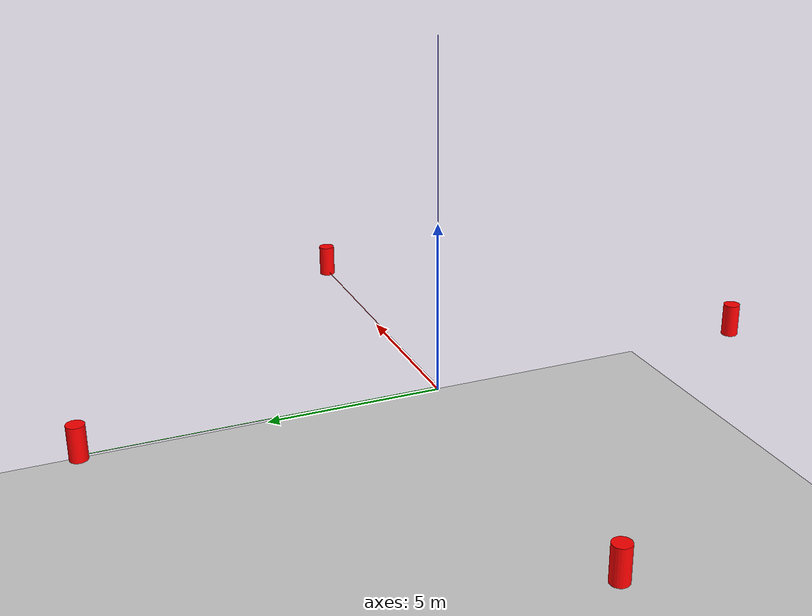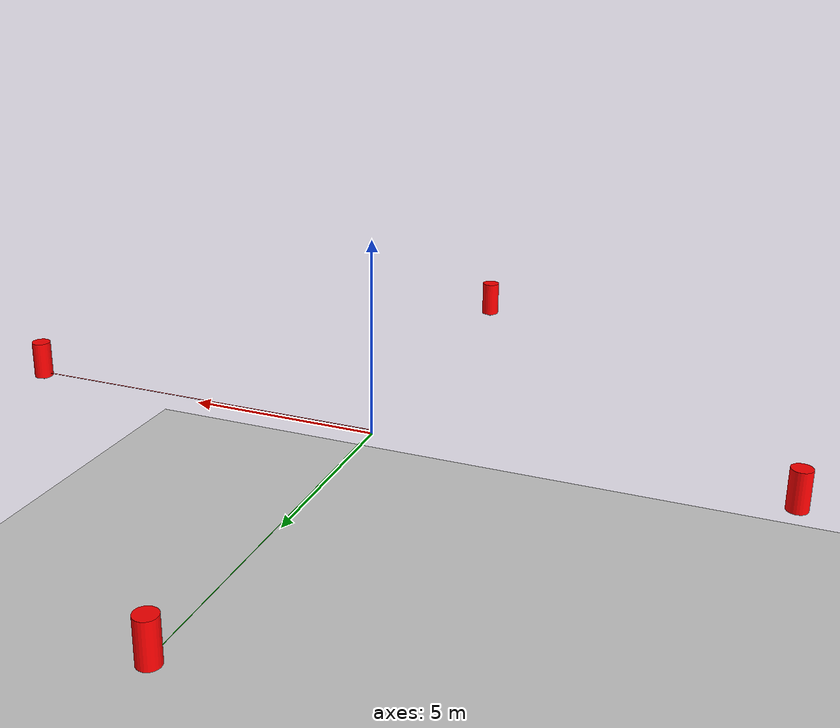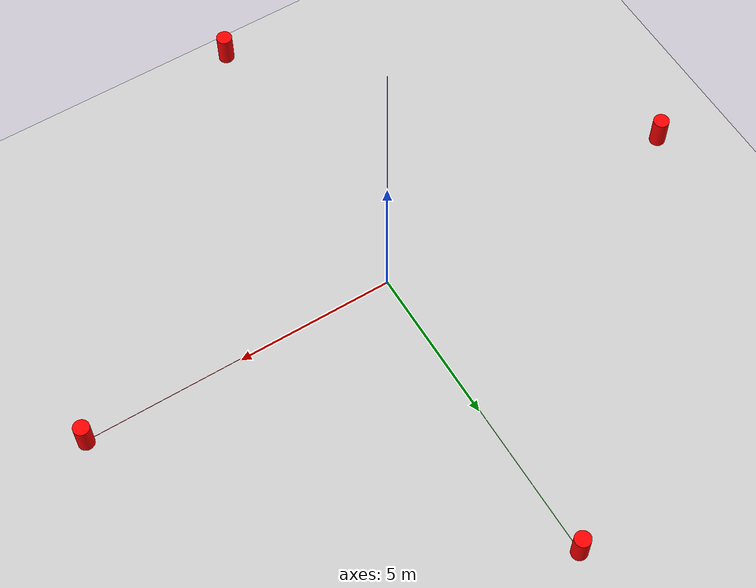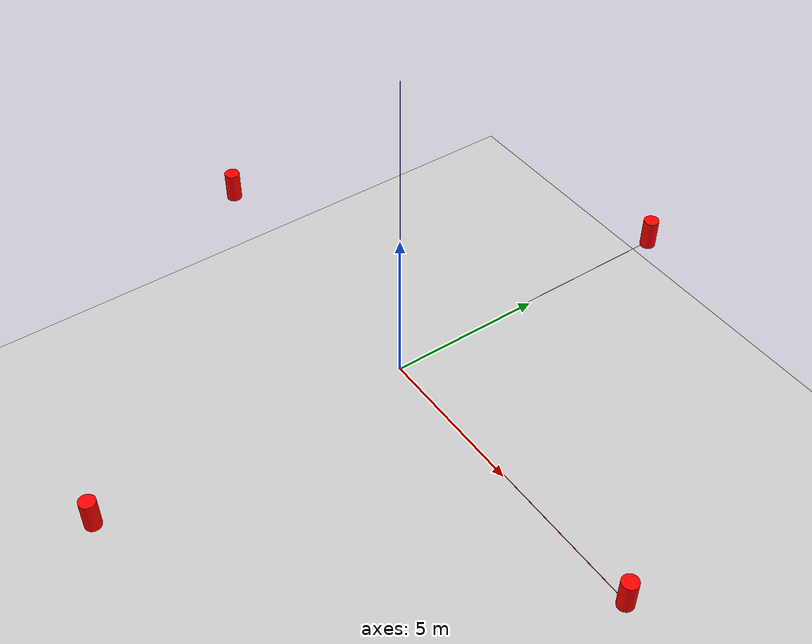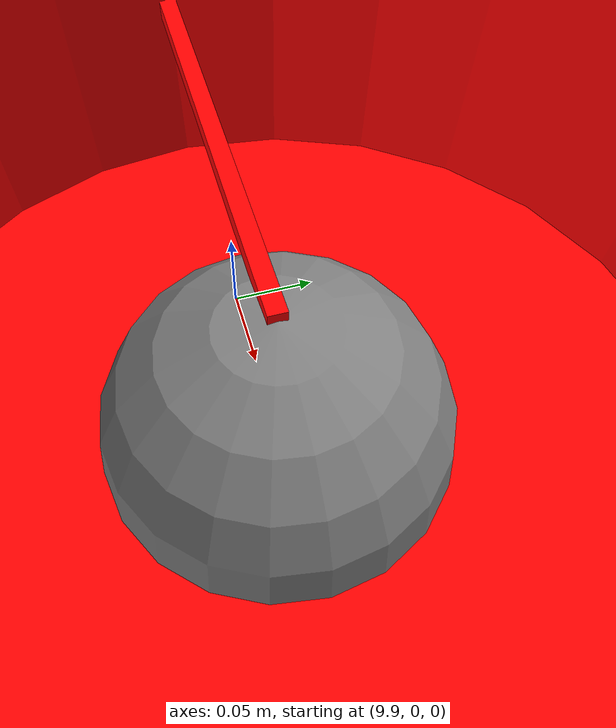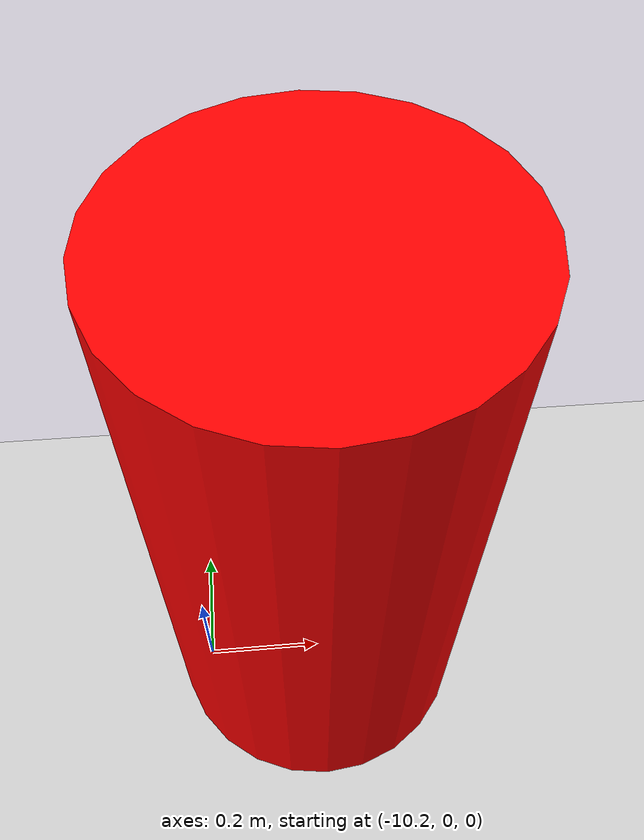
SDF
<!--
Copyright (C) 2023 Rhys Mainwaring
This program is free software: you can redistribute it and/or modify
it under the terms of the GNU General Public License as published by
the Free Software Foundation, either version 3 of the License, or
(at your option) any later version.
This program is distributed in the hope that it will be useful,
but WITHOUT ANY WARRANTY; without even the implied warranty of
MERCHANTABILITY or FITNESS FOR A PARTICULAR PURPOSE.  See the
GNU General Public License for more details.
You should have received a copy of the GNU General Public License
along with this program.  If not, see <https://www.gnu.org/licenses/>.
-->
<sdf version="1.6">
 <world name="waves">
  <physics name="1ms" type="ignored">
   <max_step_size>0.001</max_step_size>
   <real_time_factor>1</real_time_factor>
  </physics>
  <plugin filename="gz-sim-physics-system" name="gz::sim::systems::Physics"/>
  <plugin filename="gz-sim-sensors-system" name="gz::sim::systems::Sensors">
   <render_engine>ogre2</render_engine>
   <background_color>0.8 0.8 0.8</background_color>
  </plugin>
  <plugin filename="gz-sim-scene-broadcaster-system" name="gz::sim::systems::SceneBroadcaster"/>
  <plugin filename="gz-sim-user-commands-system" name="gz::sim::systems::UserCommands"/>
  <plugin filename="gz-sim-imu-system" name="gz::sim::systems::Imu"/>
  <plugin filename="gz-sim-magnetometer-system" name="gz::sim::systems::Magnetometer"/>
  <plugin filename="gz-sim-navsat-system" name="gz::sim::systems::NavSat"/>
  <plugin filename="gz-sim-wind-effects-system" name="gz::sim::systems::WindEffects">
   <force_approximation_scaling_factor>0.1</force_approximation_scaling_factor>
  </plugin>
  <plugin filename="asv_sim2-anemometer-system" name="gz::sim::systems::Anemometer"/>
  <plugin filename="asv_sim2-wind-system" name="gz::sim::systems::Wind"><topic>/wind</topic></plugin>
  <scene><ambient>1.0 1.0 1.0</ambient><background>0.8 0.8 0.8</background></scene>
  <spherical_coordinates>
   <latitude_deg>51.56730439904417</latitude_deg>
   <longitude_deg>-4.035240867824305</longitude_deg>
   <elevation>10.0</elevation>
   <heading_deg>0</heading_deg>
   <surface_model>EARTH_WGS84</surface_model>
  </spherical_coordinates>
  <light type="directional" name="sun">
   <pose>0 0 10 0 0 0</pose>
   <diffuse>0.8 0.8 0.8 1</diffuse>
   <specular>0.6 0.6 0.6 1</specular>
   <direction>-0.5 0.1 -0.9</direction>
  </light>
  <wind><linear_velocity>0 -10 0</linear_velocity></wind>
  <model name="ground_plane">
   <static>true</static>
   <pose>0 0 -10 0 0 0</pose>
   <link name="link">
    <collision name="collision">
     <geometry><plane><normal>0 0 1</normal><size>100 100</size></plane></geometry>
    </collision>
    <visual name="visual">
     <geometry><plane><normal>0 0 1</normal><size>100 100</size></plane></geometry>
     <material>
      <ambient>0.8 0.8 0.8 1</ambient>
      <diffuse>0.8 0.8 0.8 1</diffuse>
      <specular>0.8 0.8 0.8 1</specular>
     </material>
    </visual>
   </link>
  </model>
  <model name="axes">
   <static>1</static>
   <link name="link">
    <visual name="r">
     <cast_shadows>0</cast_shadows>
     <pose>5 0 0.1 0 0 0</pose>
     <geometry><box><size>10 0.01 0.01</size></box></geometry>
     <material>
      <ambient>1 0 0 1</ambient>
      <diffuse>1 0 0 1</diffuse>
      <emissive>1 0 0 1</emissive>
      <specular>0.5 0.5 0.5 1</specular>
     </material>
    </visual>
    <visual name="g">
     <cast_shadows>0</cast_shadows>
     <pose>0 5 0.1 0 0 0</pose>
     <geometry><box><size>0.01 10 0.01</size></box></geometry>
     <material>
      <ambient>0 1 0 1</ambient>
      <diffuse>0 1 0 1</diffuse>
      <emissive>0 1 0 1</emissive>
      <specular>0.5 0.5 0.5 1</specular>
     </material>
    </visual>
    <visual name="b">
     <cast_shadows>0</cast_shadows>
     <pose>0 0 5.1 0 0 0</pose>
     <geometry><box><size>0.01 0.01 10</size></box></geometry>
     <material>
      <ambient>0 0 1 1</ambient>
      <diffuse>0 0 1 1</diffuse>
      <emissive>0 0 1 1</emissive>
      <specular>0.5 0.5 0.5 1</specular>
     </material>
    </visual>
   </link>
  </model>
  <model name="buoy_wp1">
   <pose>10 0 0.5 0 0 0</pose>
   <enable_wind>true</enable_wind>
   <link name="base_link">
    <inertial>
     <mass>5</mass>
     <inertia>
      <ixx>0.494791667</ixx>
      <ixy>0</ixy>
      <ixz>0</ixz>
      <iyy>0.494791667</iyy>
      <iyz>0</iyz>
      <izz>0.15625</izz>
     </inertia>
    </inertial>
    <collision name="collision">
     <geometry><cylinder><radius>0.25</radius><length>1.0</length></cylinder></geometry>
    </collision>
    <visual name="visual">
     <geometry><cylinder><radius>0.25</radius><length>1.0</length></cylinder></geometry>
     <material><ambient>1 0 0 1</ambient><diffuse>1 0 0 1</diffuse><specular>0.1 0.1 0.1 1</specular></material>
    </visual>
   </link>
   <link name="bridle_link">
    <pose>0 0 -0.5 0 0 0</pose>
    <inertial>
     <mass>10</mass>
     <inertia><ixx>0.01000</ixx><ixy>0</ixy><ixz>0</ixz><iyy>0.01000</iyy><iyz>0</iyz><izz>0.01000</izz></inertia>
    </inertial>
    <collision name="collision"><geometry><sphere><radius>0.1</radius></sphere></geometry></collision>
    <visual name="visual">
     <geometry><sphere><radius>0.1</radius></sphere></geometry>
     <material>
      <ambient>0.5 0.5 0.5 1</ambient>
      <diffuse>0.5 0.5 0.5 1</diffuse>
      <specular>0.1 0.1 0.1 1</specular>
     </material>
    </visual>
   </link>
   <joint name="bridle_joint" type="revolute">
    <child>bridle_link</child>
    <parent>base_link</parent>
    <axis>
     <xyz>0 0 1</xyz>
     <limit><lower>0</lower><upper>0</upper></limit>
     <dynamics><damping>1.0</damping></dynamics>
    </axis>
   </joint>
   <plugin filename="gz-waves1-hydrodynamics-system" name="gz::sim::systems::Hydrodynamics">
    <enable>buoy_wp1::base_link</enable>
   </plugin>
   <plugin filename="asv_sim2-mooring-system" name="gz::sim::systems::Mooring">
    <link_name>bridle_link</link_name>
    <anchor_position>10 0 -10</anchor_position>
    <chain_length>15.0</chain_length>
    <chain_mass_per_metre>1.0</chain_mass_per_metre>
   </plugin>
  </model>
  <model name="buoy_wp2">
   <pose>0 10 0.5 0 0 0</pose>
   <enable_wind>true</enable_wind>
   <link name="base_link">
    <inertial>
     <mass>5</mass>
     <inertia>
      <ixx>0.494791667</ixx>
      <ixy>0</ixy>
      <ixz>0</ixz>
      <iyy>0.494791667</iyy>
      <iyz>0</iyz>
      <izz>0.15625</izz>
     </inertia>
    </inertial>
    <collision name="collision">
     <geometry><cylinder><radius>0.25</radius><length>1.0</length></cylinder></geometry>
    </collision>
    <visual name="visual">
     <geometry><cylinder><radius>0.25</radius><length>1.0</length></cylinder></geometry>
     <material><ambient>1 0 0 1</ambient><diffuse>1 0 0 1</diffuse><specular>0.1 0.1 0.1 1</specular></material>
    </visual>
   </link>
   <link name="bridle_link">
    <pose>0 0 -0.5 0 0 0</pose>
    <inertial>
     <mass>10</mass>
     <inertia><ixx>0.01000</ixx><ixy>0</ixy><ixz>0</ixz><iyy>0.01000</iyy><iyz>0</iyz><izz>0.01000</izz></inertia>
    </inertial>
    <collision name="collision"><geometry><sphere><radius>0.1</radius></sphere></geometry></collision>
    <visual name="visual">
     <geometry><sphere><radius>0.1</radius></sphere></geometry>
     <material>
      <ambient>0.5 0.5 0.5 1</ambient>
      <diffuse>0.5 0.5 0.5 1</diffuse>
      <specular>0.1 0.1 0.1 1</specular>
     </material>
    </visual>
   </link>
   <joint name="bridle_joint" type="revolute">
    <child>bridle_link</child>
    <parent>base_link</parent>
    <axis>
     <xyz>0 0 1</xyz>
     <limit><lower>0</lower><upper>0</upper></limit>
     <dynamics><damping>1.0</damping></dynamics>
    </axis>
   </joint>
   <plugin filename="gz-waves1-hydrodynamics-system" name="gz::sim::systems::Hydrodynamics">
    <enable>buoy_wp2::base_link</enable>
   </plugin>
   <plugin filename="asv_sim2-mooring-system" name="gz::sim::systems::Mooring">
    <link_name>bridle_link</link_name>
    <anchor_position>0 10 -10</anchor_position>
    <chain_length>15.0</chain_length>
    <chain_mass_per_metre>1.0</chain_mass_per_metre>
   </plugin>
  </model>
  <model name="buoy_wp3">
   <pose>-10 0 0.5 0 0 0</pose>
   <enable_wind>true</enable_wind>
   <link name="base_link">
    <inertial>
     <mass>5</mass>
     <inertia>
      <ixx>0.494791667</ixx>
      <ixy>0</ixy>
      <ixz>0</ixz>
      <iyy>0.494791667</iyy>
      <iyz>0</iyz>
      <izz>0.15625</izz>
     </inertia>
    </inertial>
    <collision name="collision">
     <geometry><cylinder><radius>0.25</radius><length>1.0</length></cylinder></geometry>
    </collision>
    <visual name="visual">
     <geometry><cylinder><radius>0.25</radius><length>1.0</length></cylinder></geometry>
     <material><ambient>1 0 0 1</ambient><diffuse>1 0 0 1</diffuse><specular>0.1 0.1 0.1 1</specular></material>
    </visual>
   </link>
   <link name="bridle_link">
    <pose>0 0 -0.5 0 0 0</pose>
    <inertial>
     <mass>10</mass>
     <inertia><ixx>0.01000</ixx><ixy>0</ixy><ixz>0</ixz><iyy>0.01000</iyy><iyz>0</iyz><izz>0.01000</izz></inertia>
    </inertial>
    <collision name="collision"><geometry><sphere><radius>0.1</radius></sphere></geometry></collision>
    <visual name="visual">
     <geometry><sphere><radius>0.1</radius></sphere></geometry>
     <material>
      <ambient>0.5 0.5 0.5 1</ambient>
      <diffuse>0.5 0.5 0.5 1</diffuse>
      <specular>0.1 0.1 0.1 1</specular>
     </material>
    </visual>
   </link>
   <joint name="bridle_joint" type="revolute">
    <child>bridle_link</child>
    <parent>base_link</parent>
    <axis>
     <xyz>0 0 1</xyz>
     <limit><lower>0</lower><upper>0</upper></limit>
     <dynamics><damping>1.0</damping></dynamics>
    </axis>
   </joint>
   <plugin filename="gz-waves1-hydrodynamics-system" name="gz::sim::systems::Hydrodynamics">
    <enable>buoy_wp3::base_link</enable>
   </plugin>
   <plugin filename="asv_sim2-mooring-system" name="gz::sim::systems::Mooring">
    <link_name>bridle_link</link_name>
    <anchor_position>-10 0 -10</anchor_position>
    <chain_length>15.0</chain_length>
    <chain_mass_per_metre>1.0</chain_mass_per_metre>
   </plugin>
  </model>
  <model name="buoy_wp4">
   <pose>0 -10 0.5 0 0 0</pose>
   <enable_wind>true</enable_wind>
   <link name="base_link">
    <inertial>
     <mass>5</mass>
     <inertia>
      <ixx>0.494791667</ixx>
      <ixy>0</ixy>
      <ixz>0</ixz>
      <iyy>0.494791667</iyy>
      <iyz>0</iyz>
      <izz>0.15625</izz>
     </inertia>
    </inertial>
    <collision name="collision">
     <geometry><cylinder><radius>0.25</radius><length>1.0</length></cylinder></geometry>
    </collision>
    <visual name="visual">
     <geometry><cylinder><radius>0.25</radius><length>1.0</length></cylinder></geometry>
     <material><ambient>1 0 0 1</ambient><diffuse>1 0 0 1</diffuse><specular>0.1 0.1 0.1 1</specular></material>
    </visual>
   </link>
   <link name="bridle_link">
    <pose>0 0 -0.5 0 0 0</pose>
    <inertial>
     <mass>10</mass>
     <inertia><ixx>0.01000</ixx><ixy>0</ixy><ixz>0</ixz><iyy>0.01000</iyy><iyz>0</iyz><izz>0.01000</izz></inertia>
    </inertial>
    <collision name="collision"><geometry><sphere><radius>0.1</radius></sphere></geometry></collision>
    <visual name="visual">
     <geometry><sphere><radius>0.1</radius></sphere></geometry>
     <material>
      <ambient>0.5 0.5 0.5 1</ambient>
      <diffuse>0.5 0.5 0.5 1</diffuse>
      <specular>0.1 0.1 0.1 1</specular>
     </material>
    </visual>
   </link>
   <joint name="bridle_joint" type="revolute">
    <child>bridle_link</child>
    <parent>base_link</parent>
    <axis>
     <xyz>0 0 1</xyz>
     <limit><lower>0</lower><upper>0</upper></limit>
     <dynamics><damping>1.0</damping></dynamics>
    </axis>
   </joint>
   <plugin filename="gz-waves1-hydrodynamics-system" name="gz::sim::systems::Hydrodynamics">
    <enable>buoy_wp4::base_link</enable>
   </plugin>
   <plugin filename="asv_sim2-mooring-system" name="gz::sim::systems::Mooring">
    <link_name>bridle_link</link_name>
    <anchor_position>0 -10 -10</anchor_position>
    <chain_length>15.0</chain_length>
    <chain_mass_per_metre>1.0</chain_mass_per_metre>
   </plugin>
  </model>
 </world>
</sdf>
